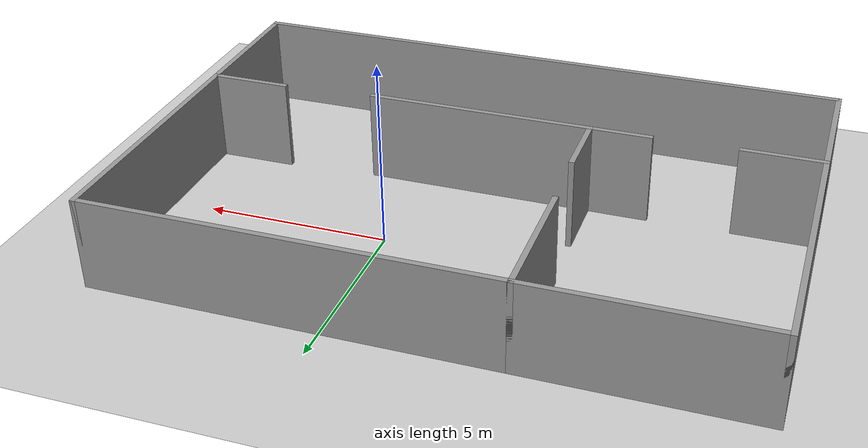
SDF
<sdf version="1.7">
 <world name="default">
  <light name="sun" type="directional">
   <pose>0 0 10 0 -0 0</pose>
   <diffuse>0.8 0.8 0.8 1</diffuse>
   <specular>0.2 0.2 0.2 1</specular>
   <attenuation>
    <range>1000</range>
    <constant>0.9</constant>
    <linear>0.01</linear>
    <quadratic>0.001</quadratic>
   </attenuation>
   <direction>-0.5 0.1 -0.9</direction>
   <spot><inner_angle>0</inner_angle><outer_angle>0</outer_angle><falloff>0</falloff></spot>
  </light>
  <model name="ground_plane">
   <static>1</static>
   <link name="link">
    <collision name="collision">
     <geometry><plane><normal>0 0 1</normal><size>100 100</size></plane></geometry>
     <surface>
      <contact><collide_bitmask>65535</collide_bitmask></contact>
      <friction><ode><mu>100</mu><mu2>50</mu2></ode></friction>
     </surface>
    </collision>
    <visual name="visual">
     <cast_shadows>0</cast_shadows>
     <geometry><plane><normal>0 0 1</normal><size>100 100</size></plane></geometry>
     <material>
      <script><uri>file://media/materials/scripts/gazebo.material</uri><name>Gazebo/Grey</name></script>
     </material>
    </visual>
   </link>
  </model>
  <gravity>0 0 -9.8</gravity>
  <magnetic_field>6e-06 2.3e-05 -4.2e-05</magnetic_field>
  <atmosphere type="adiabatic"/>
  <physics type="ode">
   <max_step_size>0.001</max_step_size>
   <real_time_factor>1</real_time_factor>
   <real_time_update_rate>1000</real_time_update_rate>
  </physics>
  <scene><ambient>0.4 0.4 0.4 1</ambient><background>0.7 0.7 0.7 1</background><shadows>1</shadows></scene>
  <spherical_coordinates>
   <surface_model>EARTH_WGS84</surface_model>
   <latitude_deg>0</latitude_deg>
   <longitude_deg>0</longitude_deg>
   <elevation>0</elevation>
   <heading_deg>0</heading_deg>
  </spherical_coordinates>
  <model name="Untitled">
   <pose>-2.25 -1.315 0 0 -0 0</pose>
   <link name="Wall_0">
    <collision name="Wall_0_Collision">
     <geometry><box><size>2 0.15 2.5</size></box></geometry>
     <pose>0 0 1.25 0 -0 0</pose>
    </collision>
    <visual name="Wall_0_Visual">
     <pose>0 0 1.25 0 -0 0</pose>
     <geometry><box><size>2 0.15 2.5</size></box></geometry>
     <material>
      <script><uri>file://media/materials/scripts/gazebo.material</uri><name>Gazebo/Grey</name></script>
      <ambient>1 1 1 1</ambient>
     </material>
     <meta><layer>0</layer></meta>
    </visual>
    <pose>-2.37 -0.89 0 0 -0 -1.5708</pose>
   </link>
   <link name="Wall_10">
    <collision name="Wall_10_Collision">
     <geometry><box><size>17 0.15 2.5</size></box></geometry>
     <pose>0 0 1.25 0 -0 0</pose>
    </collision>
    <visual name="Wall_10_Visual">
     <pose>0 0 1.25 0 -0 0</pose>
     <geometry><box><size>17 0.15 2.5</size></box></geometry>
     <material>
      <script><uri>file://media/materials/scripts/gazebo.material</uri><name>Gazebo/Grey</name></script>
      <ambient>1 1 1 1</ambient>
     </material>
     <meta><layer>0</layer></meta>
    </visual>
    <pose>0 -5.475 0 0 -0 3.14159</pose>
   </link>
   <link name="Wall_11">
    <collision name="Wall_11_Collision">
     <geometry><box><size>3.75 0.15 2.5</size></box></geometry>
     <pose>0 0 1.25 0 -0 0</pose>
    </collision>
    <visual name="Wall_11_Visual">
     <pose>0 0 1.25 0 -0 0</pose>
     <geometry><box><size>3.75 0.15 2.5</size></box></geometry>
     <material>
      <script><uri>file://media/materials/scripts/gazebo.material</uri><name>Gazebo/Grey</name></script>
      <ambient>1 1 1 1</ambient>
     </material>
     <meta><layer>0</layer></meta>
    </visual>
    <pose>-8.425 -3.675 0 0 -0 1.5708</pose>
   </link>
   <link name="Wall_12">
    <collision name="Wall_12_Collision">
     <geometry><box><size>2.25 0.15 2.5</size></box></geometry>
     <pose>0 0 1.25 0 -0 0</pose>
    </collision>
    <visual name="Wall_12_Visual">
     <pose>0 0 1.25 0 -0 0</pose>
     <geometry><box><size>2.25 0.15 2.5</size></box></geometry>
     <material>
      <script><uri>file://media/materials/scripts/gazebo.material</uri><name>Gazebo/Grey</name></script>
      <ambient>1 1 1 1</ambient>
     </material>
     <meta><layer>0</layer></meta>
    </visual>
    <pose>-7.375 -1.875 0 0 -0 0</pose>
   </link>
   <link name="Wall_14">
    <collision name="Wall_14_Collision">
     <geometry><box><size>1.75 0.15 2.5</size></box></geometry>
     <pose>0 0 1.25 0 -0 0</pose>
    </collision>
    <visual name="Wall_14_Visual">
     <pose>0 0 1.25 0 -0 0</pose>
     <geometry><box><size>1.75 0.15 2.5</size></box></geometry>
     <material>
      <script><uri>file://media/materials/scripts/gazebo.material</uri><name>Gazebo/Grey</name></script>
      <ambient>1 1 1 1</ambient>
     </material>
     <meta><layer>0</layer></meta>
    </visual>
    <pose>-3.17 -1.815 0 0 -0 3.14159</pose>
   </link>
   <link name="Wall_16">
    <collision name="Wall_16_Collision">
     <geometry><box><size>7.5 0.15 2.5</size></box></geometry>
     <pose>0 0 1.25 0 -0 0</pose>
    </collision>
    <visual name="Wall_16_Visual">
     <pose>0 0 1.25 0 -0 0</pose>
     <geometry><box><size>7.5 0.15 2.5</size></box></geometry>
     <material>
      <script><uri>file://media/materials/scripts/gazebo.material</uri><name>Gazebo/Grey</name></script>
      <ambient>1 1 1 1</ambient>
     </material>
     <meta><layer>0</layer></meta>
    </visual>
    <pose>-8.425 1.8 0 0 -0 1.5708</pose>
   </link>
   <link name="Wall_19">
    <collision name="Wall_19_Collision">
     <geometry><box><size>6.15 0.15 2.5</size></box></geometry>
     <pose>0 0 1.25 0 -0 0</pose>
    </collision>
    <visual name="Wall_19_Visual">
     <pose>0 0 1.25 0 -0 0</pose>
     <geometry><box><size>6.15 0.15 2.5</size></box></geometry>
     <material>
      <script><uri>file://media/materials/scripts/gazebo.material</uri><name>Gazebo/Grey</name></script>
      <ambient>1 1 1 1</ambient>
     </material>
     <meta><layer>0</layer></meta>
    </visual>
    <pose>-5.425 5.475 0 0 -0 0</pose>
   </link>
   <link name="Wall_2">
    <collision name="Wall_2_Collision">
     <geometry><box><size>3.75 0.15 2.5</size></box></geometry>
     <pose>0 0 1.25 0 -0 0</pose>
    </collision>
    <visual name="Wall_2_Visual">
     <pose>0 0 1.25 0 -0 0</pose>
     <geometry><box><size>3.75 0.15 2.5</size></box></geometry>
     <material>
      <script><uri>file://media/materials/scripts/gazebo.material</uri><name>Gazebo/Grey</name></script>
      <ambient>1 1 1 1</ambient>
     </material>
     <meta><layer>0</layer></meta>
    </visual>
    <pose>-2.425 3.675 0 0 -0 1.5708</pose>
   </link>
   <link name="Wall_3">
    <collision name="Wall_3_Collision">
     <geometry><box><size>11 0.15 2.5</size></box></geometry>
     <pose>0 0 1.25 0 -0 0</pose>
    </collision>
    <visual name="Wall_3_Visual">
     <pose>0 0 1.25 0 -0 0</pose>
     <geometry><box><size>11 0.15 2.5</size></box></geometry>
     <material>
      <script><uri>file://media/materials/scripts/gazebo.material</uri><name>Gazebo/Grey</name></script>
      <ambient>1 1 1 1</ambient>
     </material>
     <meta><layer>0</layer></meta>
    </visual>
    <pose>3 5.475 0 0 -0 0</pose>
   </link>
   <link name="Wall_4">
    <collision name="Wall_4_Collision">
     <geometry><box><size>7.25 0.15 2.5</size></box></geometry>
     <pose>0 0 1.25 0 -0 0</pose>
    </collision>
    <visual name="Wall_4_Visual">
     <pose>0 0 1.25 0 -0 0</pose>
     <geometry><box><size>7.25 0.15 2.5</size></box></geometry>
     <material>
      <script><uri>file://media/materials/scripts/gazebo.material</uri><name>Gazebo/Grey</name></script>
      <ambient>1 1 1 1</ambient>
     </material>
     <meta><layer>0</layer></meta>
    </visual>
    <pose>8.425 1.925 0 0 -0 -1.5708</pose>
   </link>
   <link name="Wall_5">
    <collision name="Wall_5_Collision">
     <geometry><box><size>2.25 0.15 2.5</size></box></geometry>
     <pose>0 0 1.25 0 -0 0</pose>
    </collision>
    <visual name="Wall_5_Visual">
     <pose>0 0 1.25 0 -0 0</pose>
     <geometry><box><size>2.25 0.15 2.5</size></box></geometry>
     <material>
      <script><uri>file://media/materials/scripts/gazebo.material</uri><name>Gazebo/Grey</name></script>
      <ambient>1 1 1 1</ambient>
     </material>
     <meta><layer>0</layer></meta>
    </visual>
    <pose>7.375 -1.625 0 0 -0 3.14159</pose>
   </link>
   <link name="Wall_7">
    <collision name="Wall_7_Collision">
     <geometry><box><size>6.25 0.15 2.5</size></box></geometry>
     <pose>0 0 1.25 0 -0 0</pose>
    </collision>
    <visual name="Wall_7_Visual">
     <pose>0 0 1.25 0 -0 0</pose>
     <geometry><box><size>6.25 0.15 2.5</size></box></geometry>
     <material>
      <script><uri>file://media/materials/scripts/gazebo.material</uri><name>Gazebo/Grey</name></script>
      <ambient>1 1 1 1</ambient>
     </material>
     <meta><layer>0</layer></meta>
    </visual>
    <pose>0.68 -1.815 0 0 -0 0</pose>
   </link>
   <link name="Wall_9">
    <collision name="Wall_9_Collision">
     <geometry><box><size>4 0.15 2.5</size></box></geometry>
     <pose>0 0 1.25 0 -0 0</pose>
    </collision>
    <visual name="Wall_9_Visual">
     <pose>0 0 1.25 0 -0 0</pose>
     <geometry><box><size>4 0.15 2.5</size></box></geometry>
     <material>
      <script><uri>file://media/materials/scripts/gazebo.material</uri><name>Gazebo/Grey</name></script>
      <ambient>1 1 1 1</ambient>
     </material>
     <meta><layer>0</layer></meta>
    </visual>
    <pose>8.425 -3.55 0 0 -0 -1.5708</pose>
   </link>
   <static>1</static>
  </model>
 </world>
</sdf>
